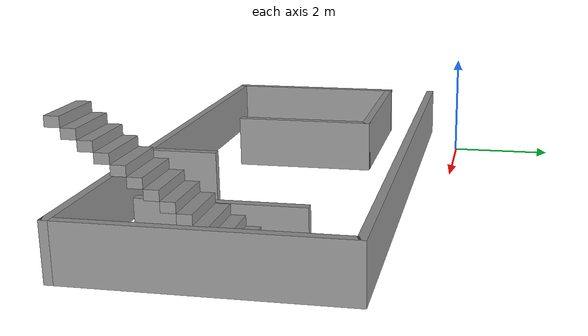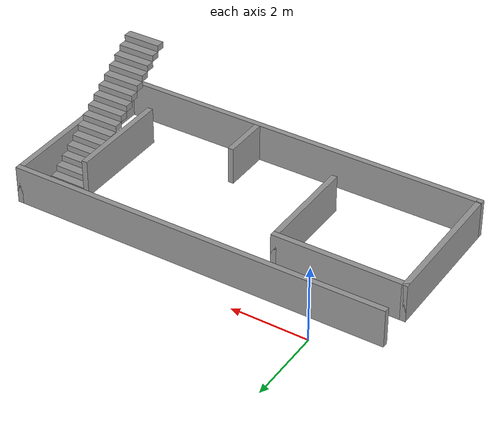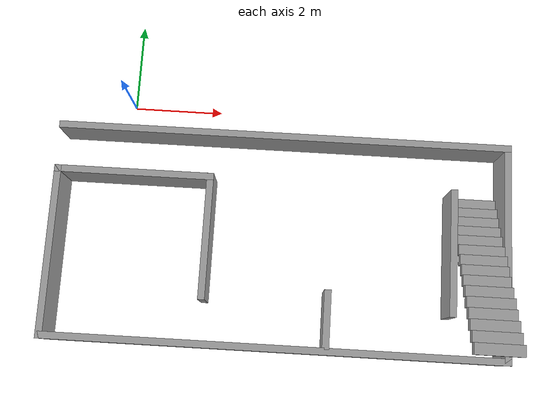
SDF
<?xml version='1.0'?>
<sdf version='1.7'>
  <model name='building'>
    <pose>3.511 -2.7085 0 0 -0 0</pose>
    <link name='Stairs_0'>
      <visual name='Stairs_0_Visual_0'>
        <pose>4.35858 0.835559 0.083333 0 -0 0</pose>
        <geometry>
          <box>
            <size>1 0.233333 0.166667</size>
          </box>
        </geometry>
        <material>
          <script>
            <uri>file://media/materials/scripts/gazebo.material</uri>
            <name>Gazebo/Grey</name>
          </script>
          <ambient>1 1 1 1</ambient>
        </material>
        <meta>
          <layer>0</layer>
        </meta>
      </visual>
      <collision name='Stairs_0_Collision_0'>
        <geometry>
          <box>
            <size>1 0.233333 0.166667</size>
          </box>
        </geometry>
        <pose>4.35858 0.835559 0.083333 0 -0 0</pose>
      </collision>
      <visual name='Stairs_0_Visual_1'>
        <pose>4.35858 0.602225 0.25 0 -0 0</pose>
        <geometry>
          <box>
            <size>1 0.233333 0.166667</size>
          </box>
        </geometry>
        <material>
          <script>
            <uri>file://media/materials/scripts/gazebo.material</uri>
            <name>Gazebo/Grey</name>
          </script>
          <ambient>1 1 1 1</ambient>
        </material>
        <meta>
          <layer>0</layer>
        </meta>
      </visual>
      <collision name='Stairs_0_Collision_1'>
        <geometry>
          <box>
            <size>1 0.233333 0.166667</size>
          </box>
        </geometry>
        <pose>4.35858 0.602225 0.25 0 -0 0</pose>
      </collision>
      <visual name='Stairs_0_Visual_2'>
        <pose>4.35858 0.368892 0.416667 0 -0 0</pose>
        <geometry>
          <box>
            <size>1 0.233333 0.166667</size>
          </box>
        </geometry>
        <material>
          <script>
            <uri>file://media/materials/scripts/gazebo.material</uri>
            <name>Gazebo/Grey</name>
          </script>
          <ambient>1 1 1 1</ambient>
        </material>
        <meta>
          <layer>0</layer>
        </meta>
      </visual>
      <collision name='Stairs_0_Collision_2'>
        <geometry>
          <box>
            <size>1 0.233333 0.166667</size>
          </box>
        </geometry>
        <pose>4.35858 0.368892 0.416667 0 -0 0</pose>
      </collision>
      <visual name='Stairs_0_Visual_3'>
        <pose>4.35858 0.135559 0.583333 0 -0 0</pose>
        <geometry>
          <box>
            <size>1 0.233333 0.166667</size>
          </box>
        </geometry>
        <material>
          <script>
            <uri>file://media/materials/scripts/gazebo.material</uri>
            <name>Gazebo/Grey</name>
          </script>
          <ambient>1 1 1 1</ambient>
        </material>
        <meta>
          <layer>0</layer>
        </meta>
      </visual>
      <collision name='Stairs_0_Collision_3'>
        <geometry>
          <box>
            <size>1 0.233333 0.166667</size>
          </box>
        </geometry>
        <pose>4.35858 0.135559 0.583333 0 -0 0</pose>
      </collision>
      <visual name='Stairs_0_Visual_4'>
        <pose>4.35858 -0.097775 0.75 0 -0 0</pose>
        <geometry>
          <box>
            <size>1 0.233333 0.166667</size>
          </box>
        </geometry>
        <material>
          <script>
            <uri>file://media/materials/scripts/gazebo.material</uri>
            <name>Gazebo/Grey</name>
          </script>
          <ambient>1 1 1 1</ambient>
        </material>
        <meta>
          <layer>0</layer>
        </meta>
      </visual>
      <collision name='Stairs_0_Collision_4'>
        <geometry>
          <box>
            <size>1 0.233333 0.166667</size>
          </box>
        </geometry>
        <pose>4.35858 -0.097775 0.75 0 -0 0</pose>
      </collision>
      <visual name='Stairs_0_Visual_5'>
        <pose>4.35858 -0.331108 0.916667 0 -0 0</pose>
        <geometry>
          <box>
            <size>1 0.233333 0.166667</size>
          </box>
        </geometry>
        <material>
          <script>
            <uri>file://media/materials/scripts/gazebo.material</uri>
            <name>Gazebo/Grey</name>
          </script>
          <ambient>1 1 1 1</ambient>
        </material>
        <meta>
          <layer>0</layer>
        </meta>
      </visual>
      <collision name='Stairs_0_Collision_5'>
        <geometry>
          <box>
            <size>1 0.233333 0.166667</size>
          </box>
        </geometry>
        <pose>4.35858 -0.331108 0.916667 0 -0 0</pose>
      </collision>
      <visual name='Stairs_0_Visual_6'>
        <pose>4.35858 -0.564441 1.08333 0 -0 0</pose>
        <geometry>
          <box>
            <size>1 0.233333 0.166667</size>
          </box>
        </geometry>
        <material>
          <script>
            <uri>file://media/materials/scripts/gazebo.material</uri>
            <name>Gazebo/Grey</name>
          </script>
          <ambient>1 1 1 1</ambient>
        </material>
        <meta>
          <layer>0</layer>
        </meta>
      </visual>
      <collision name='Stairs_0_Collision_6'>
        <geometry>
          <box>
            <size>1 0.233333 0.166667</size>
          </box>
        </geometry>
        <pose>4.35858 -0.564441 1.08333 0 -0 0</pose>
      </collision>
      <visual name='Stairs_0_Visual_7'>
        <pose>4.35858 -0.797775 1.25 0 -0 0</pose>
        <geometry>
          <box>
            <size>1 0.233333 0.166667</size>
          </box>
        </geometry>
        <material>
          <script>
            <uri>file://media/materials/scripts/gazebo.material</uri>
            <name>Gazebo/Grey</name>
          </script>
          <ambient>1 1 1 1</ambient>
        </material>
        <meta>
          <layer>0</layer>
        </meta>
      </visual>
      <collision name='Stairs_0_Collision_7'>
        <geometry>
          <box>
            <size>1 0.233333 0.166667</size>
          </box>
        </geometry>
        <pose>4.35858 -0.797775 1.25 0 -0 0</pose>
      </collision>
      <visual name='Stairs_0_Visual_8'>
        <pose>4.35858 -1.03111 1.41667 0 -0 0</pose>
        <geometry>
          <box>
            <size>1 0.233333 0.166667</size>
          </box>
        </geometry>
        <material>
          <script>
            <uri>file://media/materials/scripts/gazebo.material</uri>
            <name>Gazebo/Grey</name>
          </script>
          <ambient>1 1 1 1</ambient>
        </material>
        <meta>
          <layer>0</layer>
        </meta>
      </visual>
      <collision name='Stairs_0_Collision_8'>
        <geometry>
          <box>
            <size>1 0.233333 0.166667</size>
          </box>
        </geometry>
        <pose>4.35858 -1.03111 1.41667 0 -0 0</pose>
      </collision>
      <visual name='Stairs_0_Visual_9'>
        <pose>4.35858 -1.26444 1.58333 0 -0 0</pose>
        <geometry>
          <box>
            <size>1 0.233333 0.166667</size>
          </box>
        </geometry>
        <material>
          <script>
            <uri>file://media/materials/scripts/gazebo.material</uri>
            <name>Gazebo/Grey</name>
          </script>
          <ambient>1 1 1 1</ambient>
        </material>
        <meta>
          <layer>0</layer>
        </meta>
      </visual>
      <collision name='Stairs_0_Collision_9'>
        <geometry>
          <box>
            <size>1 0.233333 0.166667</size>
          </box>
        </geometry>
        <pose>4.35858 -1.26444 1.58333 0 -0 0</pose>
      </collision>
      <visual name='Stairs_0_Visual_10'>
        <pose>4.35858 -1.49778 1.75 0 -0 0</pose>
        <geometry>
          <box>
            <size>1 0.233333 0.166667</size>
          </box>
        </geometry>
        <material>
          <script>
            <uri>file://media/materials/scripts/gazebo.material</uri>
            <name>Gazebo/Grey</name>
          </script>
          <ambient>1 1 1 1</ambient>
        </material>
        <meta>
          <layer>0</layer>
        </meta>
      </visual>
      <collision name='Stairs_0_Collision_10'>
        <geometry>
          <box>
            <size>1 0.233333 0.166667</size>
          </box>
        </geometry>
        <pose>4.35858 -1.49778 1.75 0 -0 0</pose>
      </collision>
      <visual name='Stairs_0_Visual_11'>
        <pose>4.35858 -1.73111 1.91667 0 -0 0</pose>
        <geometry>
          <box>
            <size>1 0.233333 0.166667</size>
          </box>
        </geometry>
        <material>
          <script>
            <uri>file://media/materials/scripts/gazebo.material</uri>
            <name>Gazebo/Grey</name>
          </script>
          <ambient>1 1 1 1</ambient>
        </material>
        <meta>
          <layer>0</layer>
        </meta>
      </visual>
      <collision name='Stairs_0_Collision_11'>
        <geometry>
          <box>
            <size>1 0.233333 0.166667</size>
          </box>
        </geometry>
        <pose>4.35858 -1.73111 1.91667 0 -0 0</pose>
      </collision>
      <visual name='Stairs_0_Visual_12'>
        <pose>4.35858 -1.96444 2.08333 0 -0 0</pose>
        <geometry>
          <box>
            <size>1 0.233333 0.166667</size>
          </box>
        </geometry>
        <material>
          <script>
            <uri>file://media/materials/scripts/gazebo.material</uri>
            <name>Gazebo/Grey</name>
          </script>
          <ambient>1 1 1 1</ambient>
        </material>
        <meta>
          <layer>0</layer>
        </meta>
      </visual>
      <collision name='Stairs_0_Collision_12'>
        <geometry>
          <box>
            <size>1 0.233333 0.166667</size>
          </box>
        </geometry>
        <pose>4.35858 -1.96444 2.08333 0 -0 0</pose>
      </collision>
      <visual name='Stairs_0_Visual_13'>
        <pose>4.35858 -2.19778 2.25 0 -0 0</pose>
        <geometry>
          <box>
            <size>1 0.233333 0.166667</size>
          </box>
        </geometry>
        <material>
          <script>
            <uri>file://media/materials/scripts/gazebo.material</uri>
            <name>Gazebo/Grey</name>
          </script>
          <ambient>1 1 1 1</ambient>
        </material>
        <meta>
          <layer>0</layer>
        </meta>
      </visual>
      <collision name='Stairs_0_Collision_13'>
        <geometry>
          <box>
            <size>1 0.233333 0.166667</size>
          </box>
        </geometry>
        <pose>4.35858 -2.19778 2.25 0 -0 0</pose>
      </collision>
      <visual name='Stairs_0_Visual_14'>
        <pose>4.35858 -2.43111 2.41667 0 -0 0</pose>
        <geometry>
          <box>
            <size>1 0.233333 0.166667</size>
          </box>
        </geometry>
        <material>
          <script>
            <uri>file://media/materials/scripts/gazebo.material</uri>
            <name>Gazebo/Grey</name>
          </script>
          <ambient>1 1 1 1</ambient>
        </material>
        <meta>
          <layer>0</layer>
        </meta>
      </visual>
      <collision name='Stairs_0_Collision_14'>
        <geometry>
          <box>
            <size>1 0.233333 0.166667</size>
          </box>
        </geometry>
        <pose>4.35858 -2.43111 2.41667 0 -0 0</pose>
      </collision>
    </link>
    <link name='Wall_0'>
      <collision name='Wall_0_Collision'>
        <geometry>
          <box>
            <size>10 0.15 1</size>
          </box>
        </geometry>
        <pose>0 0 0.5 0 -0 0</pose>
      </collision>
      <visual name='Wall_0_Visual'>
        <pose>0 0 0.5 0 -0 0</pose>
        <geometry>
          <box>
            <size>10 0.15 1</size>
          </box>
        </geometry>
        <material>
          <script>
            <uri>file://media/materials/scripts/gazebo.material</uri>
            <name>Gazebo/Grey</name>
          </script>
          <ambient>1 1 1 1</ambient>
        </material>
        <meta>
          <layer>0</layer>
        </meta>
      </visual>
      <pose>-0 1.9665 0 0 -0 0</pose>
    </link>
    <link name='Wall_1'>
      <collision name='Wall_1_Collision'>
        <geometry>
          <box>
            <size>4.75 0.15 1</size>
          </box>
        </geometry>
        <pose>0 0 0.5 0 -0 0</pose>
      </collision>
      <visual name='Wall_1_Visual'>
        <pose>0 0 0.5 0 -0 0</pose>
        <geometry>
          <box>
            <size>4.75 0.15 1</size>
          </box>
        </geometry>
        <material>
          <script>
            <uri>file://media/materials/scripts/gazebo.material</uri>
            <name>Gazebo/Grey</name>
          </script>
          <ambient>1 1 1 1</ambient>
        </material>
        <meta>
          <layer>0</layer>
        </meta>
      </visual>
      <pose>4.925 -0.3335 0 0 -0 -1.5708</pose>
    </link>
    <link name='Wall_10'>
      <collision name='Wall_10_Collision'>
        <geometry>
          <box>
            <size>1.25 0.15 1</size>
          </box>
        </geometry>
        <pose>0 0 0.5 0 -0 0</pose>
      </collision>
      <visual name='Wall_10_Visual'>
        <pose>0 0 0.5 0 -0 0</pose>
        <geometry>
          <box>
            <size>1.25 0.15 1</size>
          </box>
        </geometry>
        <material>
          <script>
            <uri>file://media/materials/scripts/gazebo.material</uri>
            <name>Gazebo/Grey</name>
          </script>
          <ambient>1 1 1 1</ambient>
        </material>
        <meta>
          <layer>0</layer>
        </meta>
      </visual>
      <pose>1.105 -1.9675 0 0 -0 1.5708</pose>
    </link>
    <link name='Wall_2'>
      <collision name='Wall_2_Collision'>
        <geometry>
          <box>
            <size>10 0.15 1</size>
          </box>
        </geometry>
        <pose>0 0 0.5 0 -0 0</pose>
      </collision>
      <visual name='Wall_2_Visual'>
        <pose>0 0 0.5 0 -0 0</pose>
        <geometry>
          <box>
            <size>10 0.15 1</size>
          </box>
        </geometry>
        <material>
          <script>
            <uri>file://media/materials/scripts/gazebo.material</uri>
            <name>Gazebo/Grey</name>
          </script>
          <ambient>1 1 1 1</ambient>
        </material>
        <meta>
          <layer>0</layer>
        </meta>
      </visual>
      <pose>-0 -2.6335 0 0 -0 3.14159</pose>
    </link>
    <link name='Wall_3'>
      <collision name='Wall_3_Collision'>
        <geometry>
          <box>
            <size>3.75 0.15 1</size>
          </box>
        </geometry>
        <pose>0 0 0.5 0 -0 0</pose>
      </collision>
      <visual name='Wall_3_Visual'>
        <pose>0 0 0.5 0 -0 0</pose>
        <geometry>
          <box>
            <size>3.75 0.15 1</size>
          </box>
        </geometry>
        <material>
          <script>
            <uri>file://media/materials/scripts/gazebo.material</uri>
            <name>Gazebo/Grey</name>
          </script>
          <ambient>1 1 1 1</ambient>
        </material>
        <meta>
          <layer>0</layer>
        </meta>
      </visual>
      <pose>-4.925 -0.8335 0 0 -0 1.5708</pose>
    </link>
    <link name='Wall_4'>
      <collision name='Wall_4_Collision'>
        <geometry>
          <box>
            <size>3.5 0.15 1</size>
          </box>
        </geometry>
        <pose>0 0 0.5 0 -0 0</pose>
      </collision>
      <visual name='Wall_4_Visual'>
        <pose>0 0 0.5 0 -0 0</pose>
        <geometry>
          <box>
            <size>3.5 0.15 1</size>
          </box>
        </geometry>
        <material>
          <script>
            <uri>file://media/materials/scripts/gazebo.material</uri>
            <name>Gazebo/Grey</name>
          </script>
          <ambient>1 1 1 1</ambient>
        </material>
        <meta>
          <layer>0</layer>
        </meta>
      </visual>
      <pose>-3.25 0.9665 0 0 -0 0</pose>
    </link>
    <link name='Wall_5'>
      <collision name='Wall_5_Collision'>
        <geometry>
          <box>
            <size>2.75 0.15 1</size>
          </box>
        </geometry>
        <pose>0 0 0.5 0 -0 0</pose>
      </collision>
      <visual name='Wall_5_Visual'>
        <pose>0 0 0.5 0 -0 0</pose>
        <geometry>
          <box>
            <size>2.75 0.15 1</size>
          </box>
        </geometry>
        <material>
          <script>
            <uri>file://media/materials/scripts/gazebo.material</uri>
            <name>Gazebo/Grey</name>
          </script>
          <ambient>1 1 1 1</ambient>
        </material>
        <meta>
          <layer>0</layer>
        </meta>
      </visual>
      <pose>-1.575 -0.3335 0 0 -0 -1.5708</pose>
    </link>
    <link name='Wall_8'>
      <collision name='Wall_8_Collision'>
        <geometry>
          <box>
            <size>2.75 0.15 1</size>
          </box>
        </geometry>
        <pose>0 0 0.5 0 -0 0</pose>
      </collision>
      <visual name='Wall_8_Visual'>
        <pose>0 0 0.5 0 -0 0</pose>
        <geometry>
          <box>
            <size>2.75 0.15 1</size>
          </box>
        </geometry>
        <material>
          <script>
            <uri>file://media/materials/scripts/gazebo.material</uri>
            <name>Gazebo/Grey</name>
          </script>
          <ambient>1 1 1 1</ambient>
        </material>
        <meta>
          <layer>0</layer>
        </meta>
      </visual>
      <pose>3.763 -0.3945 0 0 -0 1.5708</pose>
    </link>
    <static>1</static>
  </model>
</sdf>
